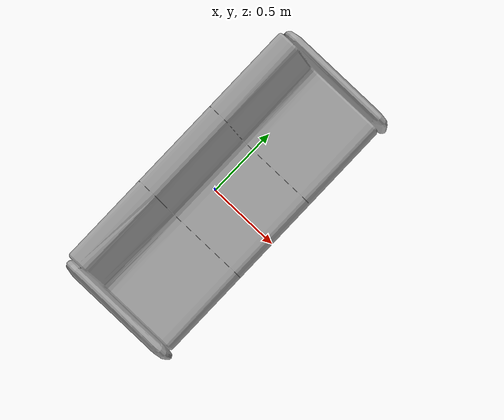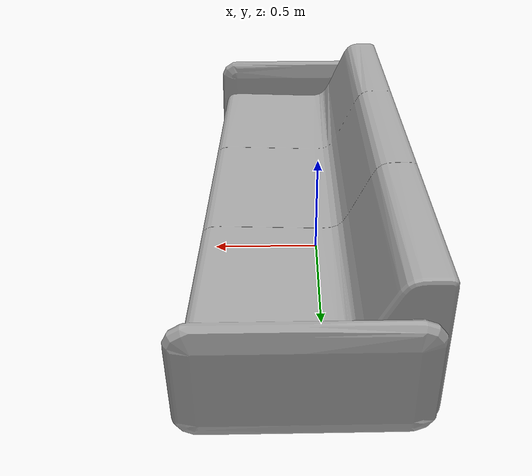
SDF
<?xml version="1.0" ?>
<sdf version="1.5">
  <model name="sofa">
    <link name="link">
      <pose>0 0 0 0 0 0</pose>
      <gravity>false</gravity>
      <inertial>
	<mass>10</mass>
      </inertial>
      <visual name="visual">
	<geometry>
	  <mesh>
	    <uri>model://sofa/meshes/sofa.dae</uri>
	  </mesh>
	</geometry>
      </visual>
      <collision name="sofa">
	<geometry>
	  <mesh>
	    <uri>model://sofa/meshes/sofa.dae</uri>
	  </mesh>
	</geometry>
      </collision>
    </link>
    <static>1</static>
  </model>
</sdf>
